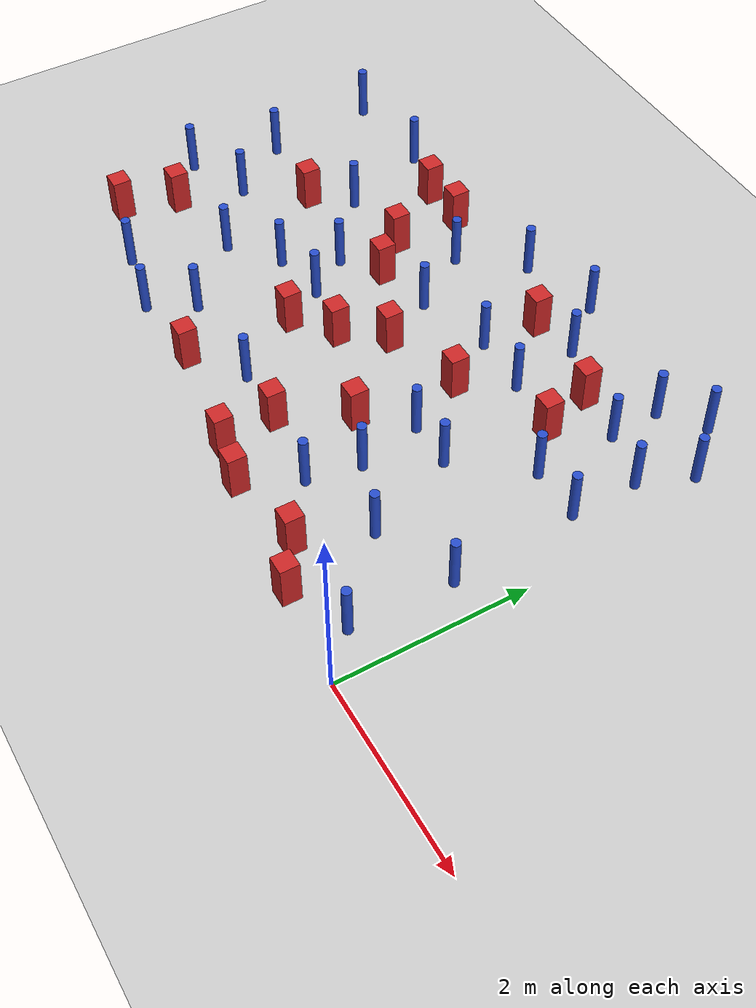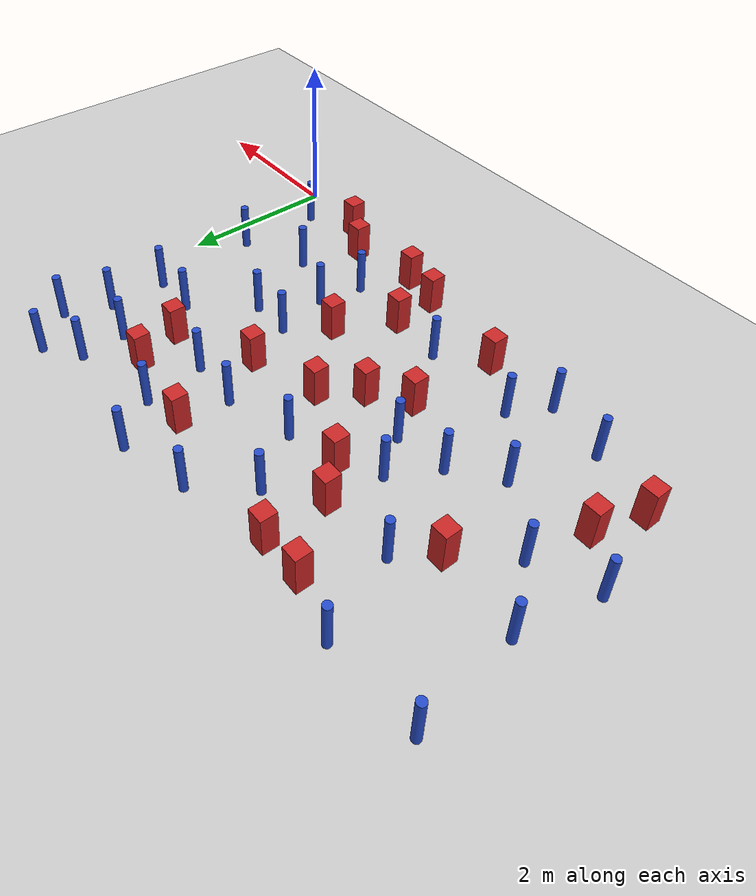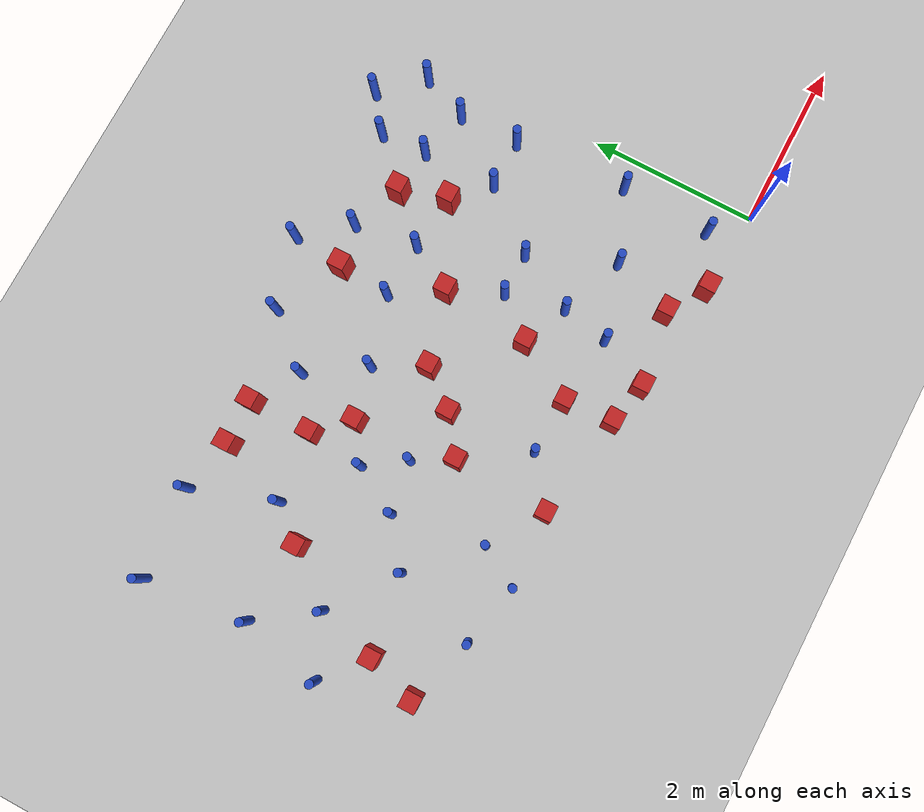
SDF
<sdf version="1.6">
 <world name="default">
  <model name="ground_plane">
   <static>1</static>
   <link name="link">
    <collision name="collision">
     <geometry><plane><normal>0 0 1</normal><size>100 100</size></plane></geometry>
     <surface><friction><ode><mu>100</mu><mu2>50</mu2></ode></friction></surface>
    </collision>
    <visual name="visual">
     <cast_shadows>0</cast_shadows>
     <geometry><plane><normal>0 0 1</normal><size>100 100</size></plane></geometry>
     <material>
      <ambient>1.0 1.0 1.0 1.0</ambient>
      <diffuse>0.8 0.8 0.8 1.0</diffuse>
      <specular>0.01 0.01 0.01 1.000000</specular>
     </material>
    </visual>
   </link>
  </model>
  <model name="pole_obstacle3">
   <static>true</static>
   <pose>-0.69472149845 4.55980668532 2.88873142074e-08 -9.90536689661e-09 4.60219948993e-07 -1.20965994957e-07</pose>
   <link name="link">
    <pose>0 0 0.3 0 -0 0</pose>
    <inertial>
     <mass>1</mass>
     <inertia><ixx>0.145833</ixx><ixy>0</ixy><ixz>0</ixz><iyy>0.145833</iyy><iyz>0</iyz><izz>0.125</izz></inertia>
    </inertial>
    <collision name="collision">
     <geometry><cylinder><radius>0.05</radius><length>.6</length></cylinder></geometry>
    </collision>
    <visual name="visual">
     <geometry><cylinder><radius>0.05</radius><length>.6</length></cylinder></geometry>
     <material>
      <script><name>Gazebo/Blue</name><uri>file://media/materials/scripts/gazebo.material</uri></script>
     </material>
    </visual>
   </link>
  </model>
  <model name="pole_obstacle11">
   <static>true</static>
   <pose>-6.77563240851 4.10837574099 2.88873142074e-08 -9.90536690842e-09 4.60219948965e-07 -1.20965994976e-07</pose>
   <link name="link">
    <pose>0 0 0.3 0 -0 0</pose>
    <inertial>
     <mass>1</mass>
     <inertia><ixx>0.145833</ixx><ixy>0</ixy><ixz>0</ixz><iyy>0.145833</iyy><iyz>0</iyz><izz>0.125</izz></inertia>
    </inertial>
    <collision name="collision">
     <geometry><cylinder><radius>0.05</radius><length>.6</length></cylinder></geometry>
    </collision>
    <visual name="visual">
     <geometry><cylinder><radius>0.05</radius><length>.6</length></cylinder></geometry>
     <material>
      <script><name>Gazebo/Blue</name><uri>file://media/materials/scripts/gazebo.material</uri></script>
     </material>
    </visual>
   </link>
  </model>
  <model name="pole_obstacle23">
   <static>true</static>
   <pose>-5.70288652627 4.17874647458 2.88873142074e-08 -9.90536690842e-09 4.60219948965e-07 -1.20965994976e-07</pose>
   <link name="link">
    <pose>0 0 0.3 0 -0 0</pose>
    <inertial>
     <mass>1</mass>
     <inertia><ixx>0.145833</ixx><ixy>0</ixy><ixz>0</ixz><iyy>0.145833</iyy><iyz>0</iyz><izz>0.125</izz></inertia>
    </inertial>
    <collision name="collision">
     <geometry><cylinder><radius>0.05</radius><length>.6</length></cylinder></geometry>
    </collision>
    <visual name="visual">
     <geometry><cylinder><radius>0.05</radius><length>.6</length></cylinder></geometry>
     <material>
      <script><name>Gazebo/Blue</name><uri>file://media/materials/scripts/gazebo.material</uri></script>
     </material>
    </visual>
   </link>
  </model>
  <model name="square_post_obstacle20">
   <static>true</static>
   <pose>-1.01994554242 0.104363808759 8.22691968438e-08 7.2212513382e-06 -7.54495500217e-07 2.29674213826e-05</pose>
   <link name="link">
    <pose>0 0 0.25 0 -0 0</pose>
    <inertial>
     <mass>100</mass>
     <inertia>
      <ixx>0.166667</ixx>
      <ixy>0</ixy>
      <ixz>0</ixz>
      <iyy>0.166667</iyy>
      <iyz>0</iyz>
      <izz>0.166667</izz>
     </inertia>
    </inertial>
    <collision name="collision"><geometry><box><size>.2 .2 .5</size></box></geometry></collision>
    <visual name="visual">
     <geometry><box><size>.2 .2 .5</size></box></geometry>
     <material>
      <script><name>Gazebo/Red</name><uri>file://media/materials/scripts/gazebo.material</uri></script>
     </material>
    </visual>
   </link>
  </model>
  <model name="square_post_obstacle28">
   <static>true</static>
   <pose>-2.52341321598 1.63760050226 8.22691968438e-08 7.2212513382e-06 -7.54495500217e-07 2.29674213826e-05</pose>
   <link name="link">
    <pose>0 0 0.25 0 -0 0</pose>
    <inertial>
     <mass>100</mass>
     <inertia>
      <ixx>0.166667</ixx>
      <ixy>0</ixy>
      <ixz>0</ixz>
      <iyy>0.166667</iyy>
      <iyz>0</iyz>
      <izz>0.166667</izz>
     </inertia>
    </inertial>
    <collision name="collision"><geometry><box><size>.2 .2 .5</size></box></geometry></collision>
    <visual name="visual">
     <geometry><box><size>.2 .2 .5</size></box></geometry>
     <material>
      <script><name>Gazebo/Red</name><uri>file://media/materials/scripts/gazebo.material</uri></script>
     </material>
    </visual>
   </link>
  </model>
  <model name="pole_obstacle36">
   <static>true</static>
   <pose>-2.76131787446 3.27700471664 2.88873142074e-08 -9.90536690232e-09 4.6021994898e-07 -1.20965994968e-07</pose>
   <link name="link">
    <pose>0 0 0.3 0 -0 0</pose>
    <inertial>
     <mass>1</mass>
     <inertia><ixx>0.145833</ixx><ixy>0</ixy><ixz>0</ixz><iyy>0.145833</iyy><iyz>0</iyz><izz>0.125</izz></inertia>
    </inertial>
    <collision name="collision">
     <geometry><cylinder><radius>0.05</radius><length>.6</length></cylinder></geometry>
    </collision>
    <visual name="visual">
     <geometry><cylinder><radius>0.05</radius><length>.6</length></cylinder></geometry>
     <material>
      <script><name>Gazebo/Blue</name><uri>file://media/materials/scripts/gazebo.material</uri></script>
     </material>
    </visual>
   </link>
  </model>
  <model name="pole_obstacle37">
   <static>true</static>
   <pose>-4.91006527726 2.05414150902 2.88873142074e-08 -9.90536690245e-09 4.6021994898e-07 -1.20965994966e-07</pose>
   <link name="link">
    <pose>0 0 0.3 0 -0 0</pose>
    <inertial>
     <mass>1</mass>
     <inertia><ixx>0.145833</ixx><ixy>0</ixy><ixz>0</ixz><iyy>0.145833</iyy><iyz>0</iyz><izz>0.125</izz></inertia>
    </inertial>
    <collision name="collision">
     <geometry><cylinder><radius>0.05</radius><length>.6</length></cylinder></geometry>
    </collision>
    <visual name="visual">
     <geometry><cylinder><radius>0.05</radius><length>.6</length></cylinder></geometry>
     <material>
      <script><name>Gazebo/Blue</name><uri>file://media/materials/scripts/gazebo.material</uri></script>
     </material>
    </visual>
   </link>
  </model>
  <model name="pole_obstacle40">
   <static>true</static>
   <pose>-0.265510030972 4.08346401959 2.88873142074e-08 -9.90536689618e-09 4.60219948994e-07 -1.20965994956e-07</pose>
   <link name="link">
    <pose>0 0 0.3 0 -0 0</pose>
    <inertial>
     <mass>1</mass>
     <inertia><ixx>0.145833</ixx><ixy>0</ixy><ixz>0</ixz><iyy>0.145833</iyy><iyz>0</iyz><izz>0.125</izz></inertia>
    </inertial>
    <collision name="collision">
     <geometry><cylinder><radius>0.05</radius><length>.6</length></cylinder></geometry>
    </collision>
    <visual name="visual">
     <geometry><cylinder><radius>0.05</radius><length>.6</length></cylinder></geometry>
     <material>
      <script><name>Gazebo/Blue</name><uri>file://media/materials/scripts/gazebo.material</uri></script>
     </material>
    </visual>
   </link>
  </model>
  <model name="pole_obstacle42">
   <static>true</static>
   <pose>-2.21395850634 3.99460249564 2.88873142074e-08 -9.90536690801e-09 4.60219948966e-07 -1.20965994976e-07</pose>
   <link name="link">
    <pose>0 0 0.3 0 -0 0</pose>
    <inertial>
     <mass>1</mass>
     <inertia><ixx>0.145833</ixx><ixy>0</ixy><ixz>0</ixz><iyy>0.145833</iyy><iyz>0</iyz><izz>0.125</izz></inertia>
    </inertial>
    <collision name="collision">
     <geometry><cylinder><radius>0.05</radius><length>.6</length></cylinder></geometry>
    </collision>
    <visual name="visual">
     <geometry><cylinder><radius>0.05</radius><length>.6</length></cylinder></geometry>
     <material>
      <script><name>Gazebo/Blue</name><uri>file://media/materials/scripts/gazebo.material</uri></script>
     </material>
    </visual>
   </link>
  </model>
  <model name="square_post_obstacle38">
   <static>true</static>
   <pose>-4.52907720383 4.01823055356 8.22691968438e-08 7.22125133819e-06 -7.54495500217e-07 2.29674213826e-05</pose>
   <link name="link">
    <pose>0 0 0.25 0 -0 0</pose>
    <inertial>
     <mass>100</mass>
     <inertia>
      <ixx>0.166667</ixx>
      <ixy>0</ixy>
      <ixz>0</ixz>
      <iyy>0.166667</iyy>
      <iyz>0</iyz>
      <izz>0.166667</izz>
     </inertia>
    </inertial>
    <collision name="collision"><geometry><box><size>.2 .2 .5</size></box></geometry></collision>
    <visual name="visual">
     <geometry><box><size>.2 .2 .5</size></box></geometry>
     <material>
      <script><name>Gazebo/Red</name><uri>file://media/materials/scripts/gazebo.material</uri></script>
     </material>
    </visual>
   </link>
  </model>
  <model name="pole_obstacle53">
   <static>true</static>
   <pose>-0.415064690158 0.385704121713 2.88873142074e-08 -9.90536689436e-09 4.60219948999e-07 -1.20965994954e-07</pose>
   <link name="link">
    <pose>0 0 0.3 0 -0 0</pose>
    <inertial>
     <mass>1</mass>
     <inertia><ixx>0.145833</ixx><ixy>0</ixy><ixz>0</ixz><iyy>0.145833</iyy><iyz>0</iyz><izz>0.125</izz></inertia>
    </inertial>
    <collision name="collision">
     <geometry><cylinder><radius>0.05</radius><length>.6</length></cylinder></geometry>
    </collision>
    <visual name="visual">
     <geometry><cylinder><radius>0.05</radius><length>.6</length></cylinder></geometry>
     <material>
      <script><name>Gazebo/Blue</name><uri>file://media/materials/scripts/gazebo.material</uri></script>
     </material>
    </visual>
   </link>
  </model>
  <model name="pole_obstacle57">
   <static>true</static>
   <pose>-5.42048572944 1.65124620767 2.88873142074e-08 -9.90536689445e-09 4.60219948999e-07 -1.20965994956e-07</pose>
   <link name="link">
    <pose>0 0 0.3 0 -0 0</pose>
    <inertial>
     <mass>1</mass>
     <inertia><ixx>0.145833</ixx><ixy>0</ixy><ixz>0</ixz><iyy>0.145833</iyy><iyz>0</iyz><izz>0.125</izz></inertia>
    </inertial>
    <collision name="collision">
     <geometry><cylinder><radius>0.05</radius><length>.6</length></cylinder></geometry>
    </collision>
    <visual name="visual">
     <geometry><cylinder><radius>0.05</radius><length>.6</length></cylinder></geometry>
     <material>
      <script><name>Gazebo/Blue</name><uri>file://media/materials/scripts/gazebo.material</uri></script>
     </material>
    </visual>
   </link>
  </model>
  <model name="pole_obstacle58">
   <static>true</static>
   <pose>-6.16917350551 2.21356214619 2.88873142074e-08 -9.90536690245e-09 4.6021994898e-07 -1.20965994966e-07</pose>
   <link name="link">
    <pose>0 0 0.3 0 -0 0</pose>
    <inertial>
     <mass>1</mass>
     <inertia><ixx>0.145833</ixx><ixy>0</ixy><ixz>0</ixz><iyy>0.145833</iyy><iyz>0</iyz><izz>0.125</izz></inertia>
    </inertial>
    <collision name="collision">
     <geometry><cylinder><radius>0.05</radius><length>.6</length></cylinder></geometry>
    </collision>
    <visual name="visual">
     <geometry><cylinder><radius>0.05</radius><length>.6</length></cylinder></geometry>
     <material>
      <script><name>Gazebo/Blue</name><uri>file://media/materials/scripts/gazebo.material</uri></script>
     </material>
    </visual>
   </link>
  </model>
  <model name="square_post_obstacle49">
   <static>true</static>
   <pose>-4.04603913146 1.70511541018 8.22691968438e-08 7.2212513382e-06 -7.54495500217e-07 2.29674213826e-05</pose>
   <link name="link">
    <pose>0 0 0.25 0 -0 0</pose>
    <inertial>
     <mass>100</mass>
     <inertia>
      <ixx>0.166667</ixx>
      <ixy>0</ixy>
      <ixz>0</ixz>
      <iyy>0.166667</iyy>
      <iyz>0</iyz>
      <izz>0.166667</izz>
     </inertia>
    </inertial>
    <collision name="collision"><geometry><box><size>.2 .2 .5</size></box></geometry></collision>
    <visual name="visual">
     <geometry><box><size>.2 .2 .5</size></box></geometry>
     <material>
      <script><name>Gazebo/Red</name><uri>file://media/materials/scripts/gazebo.material</uri></script>
     </material>
    </visual>
   </link>
  </model>
  <model name="pole_obstacle67">
   <static>true</static>
   <pose>-3.49173772397 4.2969346923 2.88873142074e-08 -9.90536689859e-09 4.60219948989e-07 -1.20965994961e-07</pose>
   <link name="link">
    <pose>0 0 0.3 0 -0 0</pose>
    <inertial>
     <mass>1</mass>
     <inertia><ixx>0.145833</ixx><ixy>0</ixy><ixz>0</ixz><iyy>0.145833</iyy><iyz>0</iyz><izz>0.125</izz></inertia>
    </inertial>
    <collision name="collision">
     <geometry><cylinder><radius>0.05</radius><length>.6</length></cylinder></geometry>
    </collision>
    <visual name="visual">
     <geometry><cylinder><radius>0.05</radius><length>.6</length></cylinder></geometry>
     <material>
      <script><name>Gazebo/Blue</name><uri>file://media/materials/scripts/gazebo.material</uri></script>
     </material>
    </visual>
   </link>
  </model>
  <model name="square_post_obstacle60">
   <static>true</static>
   <pose>-1.47909112812 0.391868703132 8.22691968438e-08 7.2212513382e-06 -7.54495500217e-07 2.29674213826e-05</pose>
   <link name="link">
    <pose>0 0 0.25 0 -0 0</pose>
    <inertial>
     <mass>100</mass>
     <inertia>
      <ixx>0.166667</ixx>
      <ixy>0</ixy>
      <ixz>0</ixz>
      <iyy>0.166667</iyy>
      <iyz>0</iyz>
      <izz>0.166667</izz>
     </inertia>
    </inertial>
    <collision name="collision"><geometry><box><size>.2 .2 .5</size></box></geometry></collision>
    <visual name="visual">
     <geometry><box><size>.2 .2 .5</size></box></geometry>
     <material>
      <script><name>Gazebo/Red</name><uri>file://media/materials/scripts/gazebo.material</uri></script>
     </material>
    </visual>
   </link>
  </model>
  <model name="pole_obstacle71">
   <static>true</static>
   <pose>-2.64916432365 4.52128493507 2.88873142074e-08 -9.90536689859e-09 4.60219948989e-07 -1.20965994961e-07</pose>
   <link name="link">
    <pose>0 0 0.3 0 -0 0</pose>
    <inertial>
     <mass>1</mass>
     <inertia><ixx>0.145833</ixx><ixy>0</ixy><ixz>0</ixz><iyy>0.145833</iyy><iyz>0</iyz><izz>0.125</izz></inertia>
    </inertial>
    <collision name="collision">
     <geometry><cylinder><radius>0.05</radius><length>.6</length></cylinder></geometry>
    </collision>
    <visual name="visual">
     <geometry><cylinder><radius>0.05</radius><length>.6</length></cylinder></geometry>
     <material>
      <script><name>Gazebo/Blue</name><uri>file://media/materials/scripts/gazebo.material</uri></script>
     </material>
    </visual>
   </link>
  </model>
  <model name="pole_obstacle81">
   <static>true</static>
   <pose>-0.382126726747 1.45884209847 2.88873142074e-08 -9.90536689905e-09 4.60219948988e-07 -1.2096599496e-07</pose>
   <link name="link">
    <pose>0 0 0.3 0 -0 0</pose>
    <inertial>
     <mass>1</mass>
     <inertia><ixx>0.145833</ixx><ixy>0</ixy><ixz>0</ixz><iyy>0.145833</iyy><iyz>0</iyz><izz>0.125</izz></inertia>
    </inertial>
    <collision name="collision">
     <geometry><cylinder><radius>0.05</radius><length>.6</length></cylinder></geometry>
    </collision>
    <visual name="visual">
     <geometry><cylinder><radius>0.05</radius><length>.6</length></cylinder></geometry>
     <material>
      <script><name>Gazebo/Blue</name><uri>file://media/materials/scripts/gazebo.material</uri></script>
     </material>
    </visual>
   </link>
  </model>
  <model name="pole_obstacle82">
   <static>true</static>
   <pose>-5.36345986784 3.20582645004 2.88873142074e-08 -9.90536690245e-09 4.6021994898e-07 -1.20965994966e-07</pose>
   <link name="link">
    <pose>0 0 0.3 0 -0 0</pose>
    <inertial>
     <mass>1</mass>
     <inertia><ixx>0.145833</ixx><ixy>0</ixy><ixz>0</ixz><iyy>0.145833</iyy><iyz>0</iyz><izz>0.125</izz></inertia>
    </inertial>
    <collision name="collision">
     <geometry><cylinder><radius>0.05</radius><length>.6</length></cylinder></geometry>
    </collision>
    <visual name="visual">
     <geometry><cylinder><radius>0.05</radius><length>.6</length></cylinder></geometry>
     <material>
      <script><name>Gazebo/Blue</name><uri>file://media/materials/scripts/gazebo.material</uri></script>
     </material>
    </visual>
   </link>
  </model>
  <model name="square_post_obstacle77">
   <static>true</static>
   <pose>-5.67796630374 2.79663623075 8.22691968438e-08 7.2212513382e-06 -7.54495500217e-07 2.29674213826e-05</pose>
   <link name="link">
    <pose>0 0 0.25 0 -0 0</pose>
    <inertial>
     <mass>100</mass>
     <inertia>
      <ixx>0.166667</ixx>
      <ixy>0</ixy>
      <ixz>0</ixz>
      <iyy>0.166667</iyy>
      <iyz>0</iyz>
      <izz>0.166667</izz>
     </inertia>
    </inertial>
    <collision name="collision"><geometry><box><size>.2 .2 .5</size></box></geometry></collision>
    <visual name="visual">
     <geometry><box><size>.2 .2 .5</size></box></geometry>
     <material>
      <script><name>Gazebo/Red</name><uri>file://media/materials/scripts/gazebo.material</uri></script>
     </material>
    </visual>
   </link>
  </model>
  <model name="pole_obstacle89">
   <static>true</static>
   <pose>-4.7338937865 0.972665302821 2.88873142074e-08 -9.90536689329e-09 4.60219949001e-07 -1.20965994952e-07</pose>
   <link name="link">
    <pose>0 0 0.3 0 -0 0</pose>
    <inertial>
     <mass>1</mass>
     <inertia><ixx>0.145833</ixx><ixy>0</ixy><ixz>0</ixz><iyy>0.145833</iyy><iyz>0</iyz><izz>0.125</izz></inertia>
    </inertial>
    <collision name="collision">
     <geometry><cylinder><radius>0.05</radius><length>.6</length></cylinder></geometry>
    </collision>
    <visual name="visual">
     <geometry><cylinder><radius>0.05</radius><length>.6</length></cylinder></geometry>
     <material>
      <script><name>Gazebo/Blue</name><uri>file://media/materials/scripts/gazebo.material</uri></script>
     </material>
    </visual>
   </link>
  </model>
  <model name="square_post_obstacle81">
   <static>true</static>
   <pose>-1.6248430149 3.73681009289 8.22691968438e-08 7.2212513382e-06 -7.54495500217e-07 2.29674213826e-05</pose>
   <link name="link">
    <pose>0 0 0.25 0 -0 0</pose>
    <inertial>
     <mass>100</mass>
     <inertia>
      <ixx>0.166667</ixx>
      <ixy>0</ixy>
      <ixz>0</ixz>
      <iyy>0.166667</iyy>
      <iyz>0</iyz>
      <izz>0.166667</izz>
     </inertia>
    </inertial>
    <collision name="collision"><geometry><box><size>.2 .2 .5</size></box></geometry></collision>
    <visual name="visual">
     <geometry><box><size>.2 .2 .5</size></box></geometry>
     <material>
      <script><name>Gazebo/Red</name><uri>file://media/materials/scripts/gazebo.material</uri></script>
     </material>
    </visual>
   </link>
  </model>
  <model name="pole_obstacle93">
   <static>true</static>
   <pose>-1.0499328702 2.80862182762 2.88873142074e-08 -9.90536689693e-09 4.60219948993e-07 -1.20965994958e-07</pose>
   <link name="link">
    <pose>0 0 0.3 0 -0 0</pose>
    <inertial>
     <mass>1</mass>
     <inertia><ixx>0.145833</ixx><ixy>0</ixy><ixz>0</ixz><iyy>0.145833</iyy><iyz>0</iyz><izz>0.125</izz></inertia>
    </inertial>
    <collision name="collision">
     <geometry><cylinder><radius>0.05</radius><length>.6</length></cylinder></geometry>
    </collision>
    <visual name="visual">
     <geometry><cylinder><radius>0.05</radius><length>.6</length></cylinder></geometry>
     <material>
      <script><name>Gazebo/Blue</name><uri>file://media/materials/scripts/gazebo.material</uri></script>
     </material>
    </visual>
   </link>
  </model>
  <model name="square_post_obstacle89">
   <static>true</static>
   <pose>-2.36451066055 0.256281378923 8.22691968438e-08 7.2212513382e-06 -7.54495500217e-07 2.29674213826e-05</pose>
   <link name="link">
    <pose>0 0 0.25 0 -0 0</pose>
    <inertial>
     <mass>100</mass>
     <inertia>
      <ixx>0.166667</ixx>
      <ixy>0</ixy>
      <ixz>0</ixz>
      <iyy>0.166667</iyy>
      <iyz>0</iyz>
      <izz>0.166667</izz>
     </inertia>
    </inertial>
    <collision name="collision"><geometry><box><size>.2 .2 .5</size></box></geometry></collision>
    <visual name="visual">
     <geometry><box><size>.2 .2 .5</size></box></geometry>
     <material>
      <script><name>Gazebo/Red</name><uri>file://media/materials/scripts/gazebo.material</uri></script>
     </material>
    </visual>
   </link>
  </model>
  <model name="pole_obstacle101">
   <static>true</static>
   <pose>-1.62427607834 2.10369074525 2.88873142074e-08 -9.90536689791e-09 4.6021994899e-07 -1.20965994959e-07</pose>
   <link name="link">
    <pose>0 0 0.3 0 -0 0</pose>
    <inertial>
     <mass>1</mass>
     <inertia><ixx>0.145833</ixx><ixy>0</ixy><ixz>0</ixz><iyy>0.145833</iyy><iyz>0</iyz><izz>0.125</izz></inertia>
    </inertial>
    <collision name="collision">
     <geometry><cylinder><radius>0.05</radius><length>.6</length></cylinder></geometry>
    </collision>
    <visual name="visual">
     <geometry><cylinder><radius>0.05</radius><length>.6</length></cylinder></geometry>
     <material>
      <script><name>Gazebo/Blue</name><uri>file://media/materials/scripts/gazebo.material</uri></script>
     </material>
    </visual>
   </link>
  </model>
  <model name="pole_obstacle104">
   <static>true</static>
   <pose>-5.7392328854 0.659174610013 2.88873142074e-08 -9.90536689837e-09 4.60219948989e-07 -1.2096599496e-07</pose>
   <link name="link">
    <pose>0 0 0.3 0 -0 0</pose>
    <inertial>
     <mass>1</mass>
     <inertia><ixx>0.145833</ixx><ixy>0</ixy><ixz>0</ixz><iyy>0.145833</iyy><iyz>0</iyz><izz>0.125</izz></inertia>
    </inertial>
    <collision name="collision">
     <geometry><cylinder><radius>0.05</radius><length>.6</length></cylinder></geometry>
    </collision>
    <visual name="visual">
     <geometry><cylinder><radius>0.05</radius><length>.6</length></cylinder></geometry>
     <material>
      <script><name>Gazebo/Blue</name><uri>file://media/materials/scripts/gazebo.material</uri></script>
     </material>
    </visual>
   </link>
  </model>
  <model name="square_post_obstacle100">
   <static>true</static>
   <pose>-1.45797895674 3.17906049568 8.22691968438e-08 7.2212513382e-06 -7.54495500217e-07 2.29674213826e-05</pose>
   <link name="link">
    <pose>0 0 0.25 0 -0 0</pose>
    <inertial>
     <mass>100</mass>
     <inertia>
      <ixx>0.166667</ixx>
      <ixy>0</ixy>
      <ixz>0</ixz>
      <iyy>0.166667</iyy>
      <iyz>0</iyz>
      <izz>0.166667</izz>
     </inertia>
    </inertial>
    <collision name="collision"><geometry><box><size>.2 .2 .5</size></box></geometry></collision>
    <visual name="visual">
     <geometry><box><size>.2 .2 .5</size></box></geometry>
     <material>
      <script><name>Gazebo/Red</name><uri>file://media/materials/scripts/gazebo.material</uri></script>
     </material>
    </visual>
   </link>
  </model>
  <model name="square_post_obstacle101">
   <static>true</static>
   <pose>-6.53471439938 0.90976206592 8.22691968438e-08 7.2212513382e-06 -7.54495500217e-07 2.29674213826e-05</pose>
   <link name="link">
    <pose>0 0 0.25 0 -0 0</pose>
    <inertial>
     <mass>100</mass>
     <inertia>
      <ixx>0.166667</ixx>
      <ixy>0</ixy>
      <ixz>0</ixz>
      <iyy>0.166667</iyy>
      <iyz>0</iyz>
      <izz>0.166667</izz>
     </inertia>
    </inertial>
    <collision name="collision"><geometry><box><size>.2 .2 .5</size></box></geometry></collision>
    <visual name="visual">
     <geometry><box><size>.2 .2 .5</size></box></geometry>
     <material>
      <script><name>Gazebo/Red</name><uri>file://media/materials/scripts/gazebo.material</uri></script>
     </material>
    </visual>
   </link>
  </model>
  <model name="square_post_obstacle102">
   <static>true</static>
   <pose>-4.10511745954 0.562515398829 8.22691968438e-08 7.2212513382e-06 -7.54495500217e-07 2.29674213826e-05</pose>
   <link name="link">
    <pose>0 0 0.25 0 -0 0</pose>
    <inertial>
     <mass>100</mass>
     <inertia>
      <ixx>0.166667</ixx>
      <ixy>0</ixy>
      <ixz>0</ixz>
      <iyy>0.166667</iyy>
      <iyz>0</iyz>
      <izz>0.166667</izz>
     </inertia>
    </inertial>
    <collision name="collision"><geometry><box><size>.2 .2 .5</size></box></geometry></collision>
    <visual name="visual">
     <geometry><box><size>.2 .2 .5</size></box></geometry>
     <material>
      <script><name>Gazebo/Red</name><uri>file://media/materials/scripts/gazebo.material</uri></script>
     </material>
    </visual>
   </link>
  </model>
  <model name="square_post_obstacle121">
   <static>true</static>
   <pose>-3.27141312453 2.45719981195 8.22691968438e-08 7.2212513382e-06 -7.54495500217e-07 2.29674213826e-05</pose>
   <link name="link">
    <pose>0 0 0.25 0 -0 0</pose>
    <inertial>
     <mass>100</mass>
     <inertia>
      <ixx>0.166667</ixx>
      <ixy>0</ixy>
      <ixz>0</ixz>
      <iyy>0.166667</iyy>
      <iyz>0</iyz>
      <izz>0.166667</izz>
     </inertia>
    </inertial>
    <collision name="collision"><geometry><box><size>.2 .2 .5</size></box></geometry></collision>
    <visual name="visual">
     <geometry><box><size>.2 .2 .5</size></box></geometry>
     <material>
      <script><name>Gazebo/Red</name><uri>file://media/materials/scripts/gazebo.material</uri></script>
     </material>
    </visual>
   </link>
  </model>
  <model name="pole_obstacle125">
   <static>true</static>
   <pose>-1.10863256749 4.24070731927 2.88873142074e-08 -9.90536689852e-09 4.60219948989e-07 -1.2096599496e-07</pose>
   <link name="link">
    <pose>0 0 0.3 0 -0 0</pose>
    <inertial>
     <mass>1</mass>
     <inertia><ixx>0.145833</ixx><ixy>0</ixy><ixz>0</ixz><iyy>0.145833</iyy><iyz>0</iyz><izz>0.125</izz></inertia>
    </inertial>
    <collision name="collision">
     <geometry><cylinder><radius>0.05</radius><length>.6</length></cylinder></geometry>
    </collision>
    <visual name="visual">
     <geometry><cylinder><radius>0.05</radius><length>.6</length></cylinder></geometry>
     <material>
      <script><name>Gazebo/Blue</name><uri>file://media/materials/scripts/gazebo.material</uri></script>
     </material>
    </visual>
   </link>
  </model>
  <model name="pole_obstacle129">
   <static>true</static>
   <pose>-5.00110988622 0.500717179819 2.88873142074e-08 -9.90536689326e-09 4.60219949001e-07 -1.20965994954e-07</pose>
   <link name="link">
    <pose>0 0 0.3 0 -0 0</pose>
    <inertial>
     <mass>1</mass>
     <inertia><ixx>0.145833</ixx><ixy>0</ixy><ixz>0</ixz><iyy>0.145833</iyy><iyz>0</iyz><izz>0.125</izz></inertia>
    </inertial>
    <collision name="collision">
     <geometry><cylinder><radius>0.05</radius><length>.6</length></cylinder></geometry>
    </collision>
    <visual name="visual">
     <geometry><cylinder><radius>0.05</radius><length>.6</length></cylinder></geometry>
     <material>
      <script><name>Gazebo/Blue</name><uri>file://media/materials/scripts/gazebo.material</uri></script>
     </material>
    </visual>
   </link>
  </model>
  <model name="pole_obstacle132">
   <static>true</static>
   <pose>-6.85131003778 1.92109682064 2.88873142074e-08 -9.90536689445e-09 4.60219948999e-07 -1.20965994956e-07</pose>
   <link name="link">
    <pose>0 0 0.3 0 -0 0</pose>
    <inertial>
     <mass>1</mass>
     <inertia><ixx>0.145833</ixx><ixy>0</ixy><ixz>0</ixz><iyy>0.145833</iyy><iyz>0</iyz><izz>0.125</izz></inertia>
    </inertial>
    <collision name="collision">
     <geometry><cylinder><radius>0.05</radius><length>.6</length></cylinder></geometry>
    </collision>
    <visual name="visual">
     <geometry><cylinder><radius>0.05</radius><length>.6</length></cylinder></geometry>
     <material>
      <script><name>Gazebo/Blue</name><uri>file://media/materials/scripts/gazebo.material</uri></script>
     </material>
    </visual>
   </link>
  </model>
  <model name="pole_obstacle133">
   <static>true</static>
   <pose>-2.1322127308 2.0992861221 2.88873142074e-08 -9.90536690232e-09 4.6021994898e-07 -1.20965994968e-07</pose>
   <link name="link">
    <pose>0 0 0.3 0 -0 0</pose>
    <inertial>
     <mass>1</mass>
     <inertia><ixx>0.145833</ixx><ixy>0</ixy><ixz>0</ixz><iyy>0.145833</iyy><iyz>0</iyz><izz>0.125</izz></inertia>
    </inertial>
    <collision name="collision">
     <geometry><cylinder><radius>0.05</radius><length>.6</length></cylinder></geometry>
    </collision>
    <visual name="visual">
     <geometry><cylinder><radius>0.05</radius><length>.6</length></cylinder></geometry>
     <material>
      <script><name>Gazebo/Blue</name><uri>file://media/materials/scripts/gazebo.material</uri></script>
     </material>
    </visual>
   </link>
  </model>
  <model name="pole_obstacle139">
   <static>true</static>
   <pose>-0.47790878298 2.8103282034 2.88873142074e-08 -9.90536689335e-09 4.60219949001e-07 -1.20965994953e-07</pose>
   <link name="link">
    <pose>0 0 0.3 0 -0 0</pose>
    <inertial>
     <mass>1</mass>
     <inertia><ixx>0.145833</ixx><ixy>0</ixy><ixz>0</ixz><iyy>0.145833</iyy><iyz>0</iyz><izz>0.125</izz></inertia>
    </inertial>
    <collision name="collision">
     <geometry><cylinder><radius>0.05</radius><length>.6</length></cylinder></geometry>
    </collision>
    <visual name="visual">
     <geometry><cylinder><radius>0.05</radius><length>.6</length></cylinder></geometry>
     <material>
      <script><name>Gazebo/Blue</name><uri>file://media/materials/scripts/gazebo.material</uri></script>
     </material>
    </visual>
   </link>
  </model>
  <model name="pole_obstacle141">
   <static>true</static>
   <pose>-4.60399679322 2.60563398328 2.88873142074e-08 -9.90536690245e-09 4.6021994898e-07 -1.20965994966e-07</pose>
   <link name="link">
    <pose>0 0 0.3 0 -0 0</pose>
    <inertial>
     <mass>1</mass>
     <inertia><ixx>0.145833</ixx><ixy>0</ixy><ixz>0</ixz><iyy>0.145833</iyy><iyz>0</iyz><izz>0.125</izz></inertia>
    </inertial>
    <collision name="collision">
     <geometry><cylinder><radius>0.05</radius><length>.6</length></cylinder></geometry>
    </collision>
    <visual name="visual">
     <geometry><cylinder><radius>0.05</radius><length>.6</length></cylinder></geometry>
     <material>
      <script><name>Gazebo/Blue</name><uri>file://media/materials/scripts/gazebo.material</uri></script>
     </material>
    </visual>
   </link>
  </model>
  <model name="pole_obstacle143">
   <static>true</static>
   <pose>-1.97464377758 1.40919822014 2.88873142074e-08 -9.90536690043e-09 4.60219948984e-07 -1.20965994963e-07</pose>
   <link name="link">
    <pose>0 0 0.3 0 -0 0</pose>
    <inertial>
     <mass>1</mass>
     <inertia><ixx>0.145833</ixx><ixy>0</ixy><ixz>0</ixz><iyy>0.145833</iyy><iyz>0</iyz><izz>0.125</izz></inertia>
    </inertial>
    <collision name="collision">
     <geometry><cylinder><radius>0.05</radius><length>.6</length></cylinder></geometry>
    </collision>
    <visual name="visual">
     <geometry><cylinder><radius>0.05</radius><length>.6</length></cylinder></geometry>
     <material>
      <script><name>Gazebo/Blue</name><uri>file://media/materials/scripts/gazebo.material</uri></script>
     </material>
    </visual>
   </link>
  </model>
  <model name="pole_obstacle148">
   <static>true</static>
   <pose>-3.99962553138 3.69641043614 2.88873142074e-08 -9.90536690748e-09 4.60219948968e-07 -1.20965994974e-07</pose>
   <link name="link">
    <pose>0 0 0.3 0 -0 0</pose>
    <inertial>
     <mass>1</mass>
     <inertia><ixx>0.145833</ixx><ixy>0</ixy><ixz>0</ixz><iyy>0.145833</iyy><iyz>0</iyz><izz>0.125</izz></inertia>
    </inertial>
    <collision name="collision">
     <geometry><cylinder><radius>0.05</radius><length>.6</length></cylinder></geometry>
    </collision>
    <visual name="visual">
     <geometry><cylinder><radius>0.05</radius><length>.6</length></cylinder></geometry>
     <material>
      <script><name>Gazebo/Blue</name><uri>file://media/materials/scripts/gazebo.material</uri></script>
     </material>
    </visual>
   </link>
  </model>
  <model name="pole_obstacle152">
   <static>true</static>
   <pose>-1.21346422736 1.11588481434 2.88873142074e-08 -9.90536689672e-09 4.60219948993e-07 -1.20965994959e-07</pose>
   <link name="link">
    <pose>0 0 0.3 0 -0 0</pose>
    <inertial>
     <mass>1</mass>
     <inertia><ixx>0.145833</ixx><ixy>0</ixy><ixz>0</ixz><iyy>0.145833</iyy><iyz>0</iyz><izz>0.125</izz></inertia>
    </inertial>
    <collision name="collision">
     <geometry><cylinder><radius>0.05</radius><length>.6</length></cylinder></geometry>
    </collision>
    <visual name="visual">
     <geometry><cylinder><radius>0.05</radius><length>.6</length></cylinder></geometry>
     <material>
      <script><name>Gazebo/Blue</name><uri>file://media/materials/scripts/gazebo.material</uri></script>
     </material>
    </visual>
   </link>
  </model>
  <model name="pole_obstacle157">
   <static>true</static>
   <pose>-3.57198224548 3.04293914126 2.88873142074e-08 -9.90536689597e-09 4.60219948995e-07 -1.20965994957e-07</pose>
   <link name="link">
    <pose>0 0 0.3 0 -0 0</pose>
    <inertial>
     <mass>1</mass>
     <inertia><ixx>0.145833</ixx><ixy>0</ixy><ixz>0</ixz><iyy>0.145833</iyy><iyz>0</iyz><izz>0.125</izz></inertia>
    </inertial>
    <collision name="collision">
     <geometry><cylinder><radius>0.05</radius><length>.6</length></cylinder></geometry>
    </collision>
    <visual name="visual">
     <geometry><cylinder><radius>0.05</radius><length>.6</length></cylinder></geometry>
     <material>
      <script><name>Gazebo/Blue</name><uri>file://media/materials/scripts/gazebo.material</uri></script>
     </material>
    </visual>
   </link>
  </model>
  <model name="pole_obstacle163">
   <static>true</static>
   <pose>-0.488090851947 3.53193762028 2.88873142074e-08 -9.90536689335e-09 4.60219949001e-07 -1.20965994953e-07</pose>
   <link name="link">
    <pose>0 0 0.3 0 -0 0</pose>
    <inertial>
     <mass>1</mass>
     <inertia><ixx>0.145833</ixx><ixy>0</ixy><ixz>0</ixz><iyy>0.145833</iyy><iyz>0</iyz><izz>0.125</izz></inertia>
    </inertial>
    <collision name="collision">
     <geometry><cylinder><radius>0.05</radius><length>.6</length></cylinder></geometry>
    </collision>
    <visual name="visual">
     <geometry><cylinder><radius>0.05</radius><length>.6</length></cylinder></geometry>
     <material>
      <script><name>Gazebo/Blue</name><uri>file://media/materials/scripts/gazebo.material</uri></script>
     </material>
    </visual>
   </link>
  </model>
  <model name="square_post_obstacle179">
   <static>true</static>
   <pose>-2.71119179438 3.88615090434 8.22691968438e-08 7.2212513382e-06 -7.54495500217e-07 2.29674213826e-05</pose>
   <link name="link">
    <pose>0 0 0.25 0 -0 0</pose>
    <inertial>
     <mass>100</mass>
     <inertia>
      <ixx>0.166667</ixx>
      <ixy>0</ixy>
      <ixz>0</ixz>
      <iyy>0.166667</iyy>
      <iyz>0</iyz>
      <izz>0.166667</izz>
     </inertia>
    </inertial>
    <collision name="collision"><geometry><box><size>.2 .2 .5</size></box></geometry></collision>
    <visual name="visual">
     <geometry><box><size>.2 .2 .5</size></box></geometry>
     <material>
      <script><name>Gazebo/Red</name><uri>file://media/materials/scripts/gazebo.material</uri></script>
     </material>
    </visual>
   </link>
  </model>
  <model name="square_post_obstacle185">
   <static>true</static>
   <pose>-2.40959284107 2.70635362147 8.22691968438e-08 7.2212513382e-06 -7.54495500217e-07 2.29674213826e-05</pose>
   <link name="link">
    <pose>0 0 0.25 0 -0 0</pose>
    <inertial>
     <mass>100</mass>
     <inertia>
      <ixx>0.166667</ixx>
      <ixy>0</ixy>
      <ixz>0</ixz>
      <iyy>0.166667</iyy>
      <iyz>0</iyz>
      <izz>0.166667</izz>
     </inertia>
    </inertial>
    <collision name="collision"><geometry><box><size>.2 .2 .5</size></box></geometry></collision>
    <visual name="visual">
     <geometry><box><size>.2 .2 .5</size></box></geometry>
     <material>
      <script><name>Gazebo/Red</name><uri>file://media/materials/scripts/gazebo.material</uri></script>
     </material>
    </visual>
   </link>
  </model>
  <model name="square_post_obstacle195">
   <static>true</static>
   <pose>-4.18480890892 2.89437468227 8.22691968438e-08 7.2212513382e-06 -7.54495500217e-07 2.29674213826e-05</pose>
   <link name="link">
    <pose>0 0 0.25 0 -0 0</pose>
    <inertial>
     <mass>100</mass>
     <inertia>
      <ixx>0.166667</ixx>
      <ixy>0</ixy>
      <ixz>0</ixz>
      <iyy>0.166667</iyy>
      <iyz>0</iyz>
      <izz>0.166667</izz>
     </inertia>
    </inertial>
    <collision name="collision"><geometry><box><size>.2 .2 .5</size></box></geometry></collision>
    <visual name="visual">
     <geometry><box><size>.2 .2 .5</size></box></geometry>
     <material>
      <script><name>Gazebo/Red</name><uri>file://media/materials/scripts/gazebo.material</uri></script>
     </material>
    </visual>
   </link>
  </model>
  <model name="square_post_obstacle201">
   <static>true</static>
   <pose>-4.53021417939 3.27545300015 8.22691968438e-08 7.2212513382e-06 -7.54495500217e-07 2.29674213826e-05</pose>
   <link name="link">
    <pose>0 0 0.25 0 -0 0</pose>
    <inertial>
     <mass>100</mass>
     <inertia>
      <ixx>0.166667</ixx>
      <ixy>0</ixy>
      <ixz>0</ixz>
      <iyy>0.166667</iyy>
      <iyz>0</iyz>
      <izz>0.166667</izz>
     </inertia>
    </inertial>
    <collision name="collision"><geometry><box><size>.2 .2 .5</size></box></geometry></collision>
    <visual name="visual">
     <geometry><box><size>.2 .2 .5</size></box></geometry>
     <material>
      <script><name>Gazebo/Red</name><uri>file://media/materials/scripts/gazebo.material</uri></script>
     </material>
    </visual>
   </link>
  </model>
  <model name="square_post_obstacle204">
   <static>true</static>
   <pose>-6.34376419577 1.50395610705 8.22691968438e-08 7.2212513382e-06 -7.54495500217e-07 2.29674213826e-05</pose>
   <link name="link">
    <pose>0 0 0.25 0 -0 0</pose>
    <inertial>
     <mass>100</mass>
     <inertia>
      <ixx>0.166667</ixx>
      <ixy>0</ixy>
      <ixz>0</ixz>
      <iyy>0.166667</iyy>
      <iyz>0</iyz>
      <izz>0.166667</izz>
     </inertia>
    </inertial>
    <collision name="collision"><geometry><box><size>.2 .2 .5</size></box></geometry></collision>
    <visual name="visual">
     <geometry><box><size>.2 .2 .5</size></box></geometry>
     <material>
      <script><name>Gazebo/Red</name><uri>file://media/materials/scripts/gazebo.material</uri></script>
     </material>
    </visual>
   </link>
  </model>
  <model name="square_post_obstacle205">
   <static>true</static>
   <pose>-2.91206556604 0.940808635139 8.22691968438e-08 7.2212513382e-06 -7.54495500217e-07 2.29674213826e-05</pose>
   <link name="link">
    <pose>0 0 0.25 0 -0 0</pose>
    <inertial>
     <mass>100</mass>
     <inertia>
      <ixx>0.166667</ixx>
      <ixy>0</ixy>
      <ixz>0</ixz>
      <iyy>0.166667</iyy>
      <iyz>0</iyz>
      <izz>0.166667</izz>
     </inertia>
    </inertial>
    <collision name="collision"><geometry><box><size>.2 .2 .5</size></box></geometry></collision>
    <visual name="visual">
     <geometry><box><size>.2 .2 .5</size></box></geometry>
     <material>
      <script><name>Gazebo/Red</name><uri>file://media/materials/scripts/gazebo.material</uri></script>
     </material>
    </visual>
   </link>
  </model>
  <model name="square_post_obstacle206">
   <static>true</static>
   <pose>-5.05533667621 4.01107454046 8.22691968438e-08 7.22125133819e-06 -7.54495500217e-07 2.29674213826e-05</pose>
   <link name="link">
    <pose>0 0 0.25 0 -0 0</pose>
    <inertial>
     <mass>100</mass>
     <inertia>
      <ixx>0.166667</ixx>
      <ixy>0</ixy>
      <ixz>0</ixz>
      <iyy>0.166667</iyy>
      <iyz>0</iyz>
      <izz>0.166667</izz>
     </inertia>
    </inertial>
    <collision name="collision"><geometry><box><size>.2 .2 .5</size></box></geometry></collision>
    <visual name="visual">
     <geometry><box><size>.2 .2 .5</size></box></geometry>
     <material>
      <script><name>Gazebo/Red</name><uri>file://media/materials/scripts/gazebo.material</uri></script>
     </material>
    </visual>
   </link>
  </model>
  <model name="pole_obstacle194">
   <static>true</static>
   <pose>-2.08412253761 0.847754778426 2.88873142074e-08 -9.90536689285e-09 4.60219949002e-07 -1.20965994953e-07</pose>
   <link name="link">
    <pose>0 0 0.3 0 -0 0</pose>
    <inertial>
     <mass>1</mass>
     <inertia><ixx>0.145833</ixx><ixy>0</ixy><ixz>0</ixz><iyy>0.145833</iyy><iyz>0</iyz><izz>0.125</izz></inertia>
    </inertial>
    <collision name="collision">
     <geometry><cylinder><radius>0.05</radius><length>.6</length></cylinder></geometry>
    </collision>
    <visual name="visual">
     <geometry><cylinder><radius>0.05</radius><length>.6</length></cylinder></geometry>
     <material>
      <script><name>Gazebo/Blue</name><uri>file://media/materials/scripts/gazebo.material</uri></script>
     </material>
    </visual>
   </link>
  </model>
  <model name="pole_obstacle195">
   <static>true</static>
   <pose>-1.07814888927 3.6897301636 2.88873142074e-08 -9.90536689791e-09 4.6021994899e-07 -1.20965994959e-07</pose>
   <link name="link">
    <pose>0 0 0.3 0 -0 0</pose>
    <inertial>
     <mass>1</mass>
     <inertia><ixx>0.145833</ixx><ixy>0</ixy><ixz>0</ixz><iyy>0.145833</iyy><iyz>0</iyz><izz>0.125</izz></inertia>
    </inertial>
    <collision name="collision">
     <geometry><cylinder><radius>0.05</radius><length>.6</length></cylinder></geometry>
    </collision>
    <visual name="visual">
     <geometry><cylinder><radius>0.05</radius><length>.6</length></cylinder></geometry>
     <material>
      <script><name>Gazebo/Blue</name><uri>file://media/materials/scripts/gazebo.material</uri></script>
     </material>
    </visual>
   </link>
  </model>
  <model name="pole_obstacle198">
   <static>true</static>
   <pose>-2.10435159725 3.24815770209 2.88873142074e-08 -9.90536690232e-09 4.6021994898e-07 -1.20965994968e-07</pose>
   <link name="link">
    <pose>0 0 0.3 0 -0 0</pose>
    <inertial>
     <mass>1</mass>
     <inertia><ixx>0.145833</ixx><ixy>0</ixy><ixz>0</ixz><iyy>0.145833</iyy><iyz>0</iyz><izz>0.125</izz></inertia>
    </inertial>
    <collision name="collision">
     <geometry><cylinder><radius>0.05</radius><length>.6</length></cylinder></geometry>
    </collision>
    <visual name="visual">
     <geometry><cylinder><radius>0.05</radius><length>.6</length></cylinder></geometry>
     <material>
      <script><name>Gazebo/Blue</name><uri>file://media/materials/scripts/gazebo.material</uri></script>
     </material>
    </visual>
   </link>
  </model>
  <model name="pole_obstacle200">
   <static>true</static>
   <pose>-6.64222150634 2.8800952488 2.88873142074e-08 -9.90536690245e-09 4.6021994898e-07 -1.20965994966e-07</pose>
   <link name="link">
    <pose>0 0 0.3 0 -0 0</pose>
    <inertial>
     <mass>1</mass>
     <inertia><ixx>0.145833</ixx><ixy>0</ixy><ixz>0</ixz><iyy>0.145833</iyy><iyz>0</iyz><izz>0.125</izz></inertia>
    </inertial>
    <collision name="collision">
     <geometry><cylinder><radius>0.05</radius><length>.6</length></cylinder></geometry>
    </collision>
    <visual name="visual">
     <geometry><cylinder><radius>0.05</radius><length>.6</length></cylinder></geometry>
     <material>
      <script><name>Gazebo/Blue</name><uri>file://media/materials/scripts/gazebo.material</uri></script>
     </material>
    </visual>
   </link>
  </model>
  <model name="pole_obstacle209">
   <static>true</static>
   <pose>-3.57204984944 0.969678596814 2.88873142074e-08 -9.90536689701e-09 4.60219948992e-07 -1.20965994959e-07</pose>
   <link name="link">
    <pose>0 0 0.3 0 -0 0</pose>
    <inertial>
     <mass>1</mass>
     <inertia><ixx>0.145833</ixx><ixy>0</ixy><ixz>0</ixz><iyy>0.145833</iyy><iyz>0</iyz><izz>0.125</izz></inertia>
    </inertial>
    <collision name="collision">
     <geometry><cylinder><radius>0.05</radius><length>.6</length></cylinder></geometry>
    </collision>
    <visual name="visual">
     <geometry><cylinder><radius>0.05</radius><length>.6</length></cylinder></geometry>
     <material>
      <script><name>Gazebo/Blue</name><uri>file://media/materials/scripts/gazebo.material</uri></script>
     </material>
    </visual>
   </link>
  </model>
  <model name="pole_obstacle214">
   <static>true</static>
   <pose>-4.29787223083 2.15010279966 2.88873142074e-08 -9.90536690245e-09 4.6021994898e-07 -1.20965994966e-07</pose>
   <link name="link">
    <pose>0 0 0.3 0 -0 0</pose>
    <inertial>
     <mass>1</mass>
     <inertia><ixx>0.145833</ixx><ixy>0</ixy><ixz>0</ixz><iyy>0.145833</iyy><iyz>0</iyz><izz>0.125</izz></inertia>
    </inertial>
    <collision name="collision">
     <geometry><cylinder><radius>0.05</radius><length>.6</length></cylinder></geometry>
    </collision>
    <visual name="visual">
     <geometry><cylinder><radius>0.05</radius><length>.6</length></cylinder></geometry>
     <material>
      <script><name>Gazebo/Blue</name><uri>file://media/materials/scripts/gazebo.material</uri></script>
     </material>
    </visual>
   </link>
  </model>
  <model name="square_post_obstacle211">
   <static>true</static>
   <pose>-3.61737996738 2.02824996466 8.22691968438e-08 7.2212513382e-06 -7.54495500217e-07 2.29674213826e-05</pose>
   <link name="link">
    <pose>0 0 0.25 0 -0 0</pose>
    <inertial>
     <mass>100</mass>
     <inertia>
      <ixx>0.166667</ixx>
      <ixy>0</ixy>
      <ixz>0</ixz>
      <iyy>0.166667</iyy>
      <iyz>0</iyz>
      <izz>0.166667</izz>
     </inertia>
    </inertial>
    <collision name="collision"><geometry><box><size>.2 .2 .5</size></box></geometry></collision>
    <visual name="visual">
     <geometry><box><size>.2 .2 .5</size></box></geometry>
     <material>
      <script><name>Gazebo/Red</name><uri>file://media/materials/scripts/gazebo.material</uri></script>
     </material>
    </visual>
   </link>
  </model>
  <model name="square_post_obstacle227">
   <static>true</static>
   <pose>-2.86770996738 0.360515964659 8.22691968438e-08 7.2212513382e-06 -7.54495500217e-07 2.29674213826e-05</pose>
   <link name="link">
    <pose>0 0 0.25 0 -0 0</pose>
    <inertial>
     <mass>100</mass>
     <inertia>
      <ixx>0.166667</ixx>
      <ixy>0</ixy>
      <ixz>0</ixz>
      <iyy>0.166667</iyy>
      <iyz>0</iyz>
      <izz>0.166667</izz>
     </inertia>
    </inertial>
    <collision name="collision"><geometry><box><size>.2 .2 .5</size></box></geometry></collision>
    <visual name="visual">
     <geometry><box><size>.2 .2 .5</size></box></geometry>
     <material>
      <script><name>Gazebo/Red</name><uri>file://media/materials/scripts/gazebo.material</uri></script>
     </material>
    </visual>
   </link>
  </model>
 </world>
</sdf>
